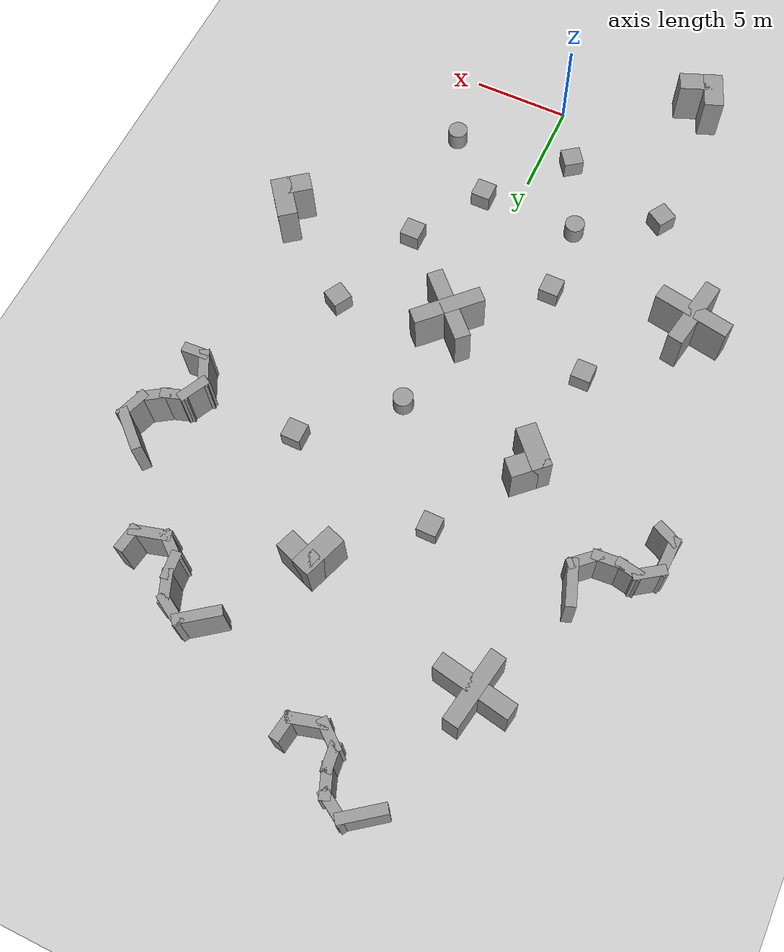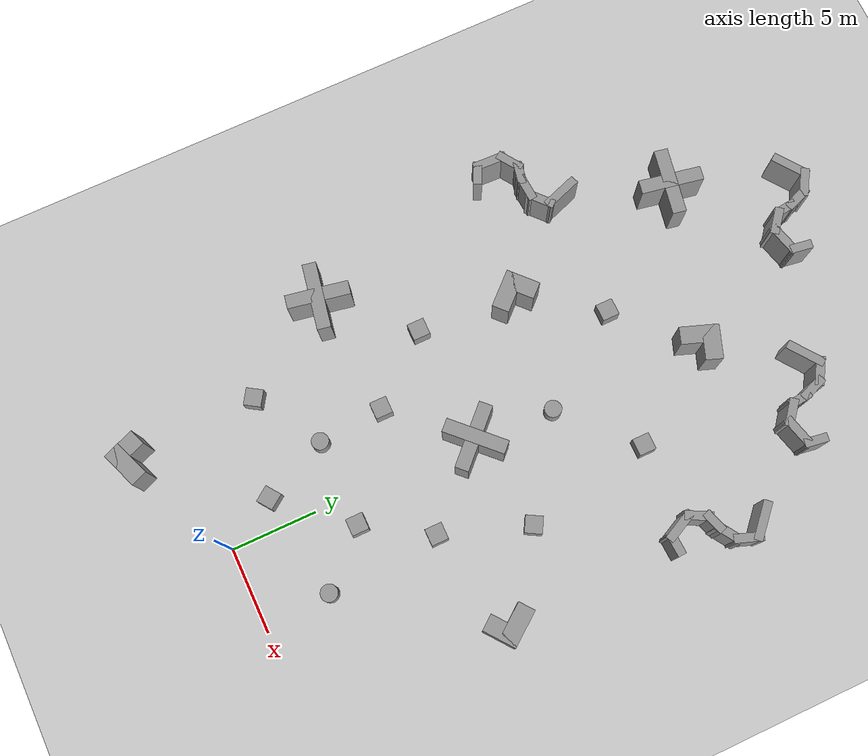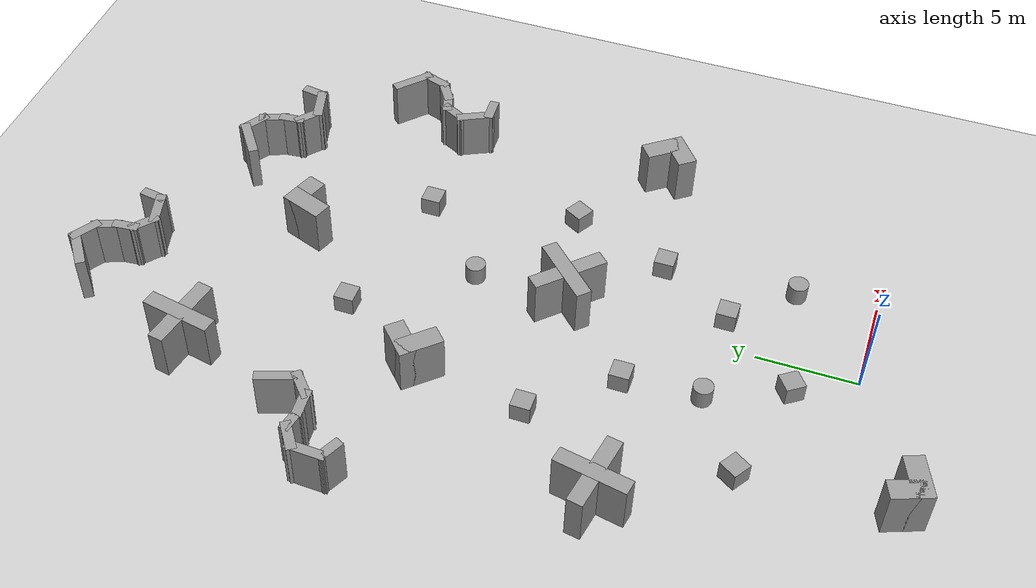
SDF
<sdf version="1.7">
 <world name="default">
  <light name="sun" type="directional">
   <pose>0 0 10 0 -0 0</pose>
   <diffuse>0.8 0.8 0.8 1</diffuse>
   <specular>0.2 0.2 0.2 1</specular>
   <attenuation>
    <range>1000</range>
    <constant>0.9</constant>
    <linear>0.01</linear>
    <quadratic>0.001</quadratic>
   </attenuation>
   <direction>-0.5 0.1 -0.9</direction>
   <spot><inner_angle>0</inner_angle><outer_angle>0</outer_angle><falloff>0</falloff></spot>
  </light>
  <model name="ground_plane">
   <static>1</static>
   <link name="link">
    <collision name="collision">
     <geometry><plane><normal>0 0 1</normal><size>100 100</size></plane></geometry>
     <surface><friction><ode><mu>100</mu><mu2>50</mu2></ode></friction></surface>
    </collision>
    <visual name="visual">
     <cast_shadows>0</cast_shadows>
     <geometry><plane><normal>0 0 1</normal><size>100 100</size></plane></geometry>
     <material>
      <script><uri>file://media/materials/scripts/gazebo.material</uri><name>Gazebo/Grey</name></script>
     </material>
    </visual>
   </link>
  </model>
  <gravity>0 0 -9.8</gravity>
  <magnetic_field>6e-06 2.3e-05 -4.2e-05</magnetic_field>
  <atmosphere type="adiabatic"/>
  <physics type="ode">
   <max_step_size>0.001</max_step_size>
   <real_time_factor>1</real_time_factor>
   <real_time_update_rate>1000</real_time_update_rate>
  </physics>
  <scene><ambient>0.4 0.4 0.4 1</ambient><background>0.7 0.7 0.7 1</background><shadows>1</shadows></scene>
  <spherical_coordinates>
   <surface_model>EARTH_WGS84</surface_model>
   <latitude_deg>0</latitude_deg>
   <longitude_deg>0</longitude_deg>
   <elevation>0</elevation>
   <heading_deg>0</heading_deg>
  </spherical_coordinates>
  <model name="unit_box">
   <pose>-1.66416 3.01834 0.5 0 -0 0.628744</pose>
   <link name="link">
    <inertial>
     <mass>1</mass>
     <inertia>
      <ixx>0.166667</ixx>
      <ixy>0</ixy>
      <ixz>0</ixz>
      <iyy>0.166667</iyy>
      <iyz>0</iyz>
      <izz>0.166667</izz>
     </inertia>
    </inertial>
    <collision name="collision"><geometry><box><size>1 1 1</size></box></geometry></collision>
    <visual name="visual">
     <geometry><box><size>1 1 1</size></box></geometry>
     <material>
      <script><name>Gazebo/Grey</name><uri>file://media/materials/scripts/gazebo.material</uri></script>
     </material>
    </visual>
   </link>
  </model>
  <model name="unit_box_0">
   <pose>1.73005 6.85128 0.5 0 -0 0</pose>
   <link name="link">
    <inertial>
     <mass>1</mass>
     <inertia>
      <ixx>0.166667</ixx>
      <ixy>0</ixy>
      <ixz>0</ixz>
      <iyy>0.166667</iyy>
      <iyz>0</iyz>
      <izz>0.166667</izz>
     </inertia>
    </inertial>
    <collision name="collision"><geometry><box><size>1 1 1</size></box></geometry></collision>
    <visual name="visual">
     <geometry><box><size>1 1 1</size></box></geometry>
     <material>
      <script><name>Gazebo/Grey</name><uri>file://media/materials/scripts/gazebo.material</uri></script>
     </material>
    </visual>
   </link>
  </model>
  <model name="unit_cylinder">
   <pose>-3.38082 6.83674 0.499997 3e-06 2e-06 0</pose>
   <link name="link">
    <inertial>
     <mass>1</mass>
     <inertia><ixx>0.145833</ixx><ixy>0</ixy><ixz>0</ixz><iyy>0.145833</iyy><iyz>0</iyz><izz>0.125</izz></inertia>
    </inertial>
    <collision name="collision">
     <geometry><cylinder><radius>0.5</radius><length>1</length></cylinder></geometry>
    </collision>
    <visual name="visual">
     <geometry><cylinder><radius>0.5</radius><length>1</length></cylinder></geometry>
     <material>
      <script><name>Gazebo/Grey</name><uri>file://media/materials/scripts/gazebo.material</uri></script>
     </material>
    </visual>
   </link>
  </model>
  <model name="unit_cylinder_0">
   <pose>4.51628 3.96318 0.499992 -3e-06 3e-06 0</pose>
   <link name="link">
    <inertial>
     <mass>1</mass>
     <inertia><ixx>0.145833</ixx><ixy>0</ixy><ixz>0</ixz><iyy>0.145833</iyy><iyz>0</iyz><izz>0.125</izz></inertia>
    </inertial>
    <collision name="collision">
     <geometry><cylinder><radius>0.5</radius><length>1</length></cylinder></geometry>
    </collision>
    <visual name="visual">
     <geometry><cylinder><radius>0.5</radius><length>1</length></cylinder></geometry>
     <material>
      <script><name>Gazebo/Grey</name><uri>file://media/materials/scripts/gazebo.material</uri></script>
     </material>
    </visual>
   </link>
  </model>
  <model name="unit_box_1">
   <pose>4.06174 10.5852 0.5 0 -0 0</pose>
   <link name="link">
    <inertial>
     <mass>1</mass>
     <inertia>
      <ixx>0.166667</ixx>
      <ixy>0</ixy>
      <ixz>0</ixz>
      <iyy>0.166667</iyy>
      <iyz>0</iyz>
      <izz>0.166667</izz>
     </inertia>
    </inertial>
    <collision name="collision"><geometry><box><size>1 1 1</size></box></geometry></collision>
    <visual name="visual">
     <geometry><box><size>1 1 1</size></box></geometry>
     <material>
      <script><name>Gazebo/Grey</name><uri>file://media/materials/scripts/gazebo.material</uri></script>
     </material>
    </visual>
   </link>
  </model>
  <model name="unit_box_2">
   <pose>-3.69714 10.6982 0.5 0 -0 0</pose>
   <link name="link">
    <inertial>
     <mass>1</mass>
     <inertia>
      <ixx>0.166667</ixx>
      <ixy>0</ixy>
      <ixz>0</ixz>
      <iyy>0.166667</iyy>
      <iyz>0</iyz>
      <izz>0.166667</izz>
     </inertia>
    </inertial>
    <collision name="collision"><geometry><box><size>1 1 1</size></box></geometry></collision>
    <visual name="visual">
     <geometry><box><size>1 1 1</size></box></geometry>
     <material>
      <script><name>Gazebo/Grey</name><uri>file://media/materials/scripts/gazebo.material</uri></script>
     </material>
    </visual>
   </link>
  </model>
  <model name="unit_box_3">
   <pose>5.82902 15.6637 0.5 0 -0 1.05451</pose>
   <link name="link">
    <inertial>
     <mass>1</mass>
     <inertia>
      <ixx>0.166667</ixx>
      <ixy>0</ixy>
      <ixz>0</ixz>
      <iyy>0.166667</iyy>
      <iyz>0</iyz>
      <izz>0.166667</izz>
     </inertia>
    </inertial>
    <collision name="collision"><geometry><box><size>1 1 1</size></box></geometry></collision>
    <visual name="visual">
     <geometry><box><size>1 1 1</size></box></geometry>
     <material>
      <script><name>Gazebo/Grey</name><uri>file://media/materials/scripts/gazebo.material</uri></script>
     </material>
    </visual>
   </link>
  </model>
  <model name="unit_cylinder_2">
   <pose>0.425725 19.4303 0.499992 -3e-06 -4e-06 -0</pose>
   <link name="link">
    <inertial>
     <mass>1</mass>
     <inertia><ixx>0.145833</ixx><ixy>0</ixy><ixz>0</ixz><iyy>0.145833</iyy><iyz>0</iyz><izz>0.125</izz></inertia>
    </inertial>
    <collision name="collision">
     <geometry><cylinder><radius>0.5</radius><length>1</length></cylinder></geometry>
    </collision>
    <visual name="visual">
     <geometry><cylinder><radius>0.5</radius><length>1</length></cylinder></geometry>
     <material>
      <script><name>Gazebo/Grey</name><uri>file://media/materials/scripts/gazebo.material</uri></script>
     </material>
    </visual>
   </link>
  </model>
  <model name="unit_box_4">
   <pose>-6.96298 14.4858 0.5 -0 -0 -0</pose>
   <link name="link">
    <inertial>
     <mass>1</mass>
     <inertia>
      <ixx>0.166667</ixx>
      <ixy>0</ixy>
      <ixz>0</ixz>
      <iyy>0.166667</iyy>
      <iyz>0</iyz>
      <izz>0.166667</izz>
     </inertia>
    </inertial>
    <collision name="collision"><geometry><box><size>1 1 1</size></box></geometry></collision>
    <visual name="visual">
     <geometry><box><size>1 1 1</size></box></geometry>
     <material>
      <script><name>Gazebo/Grey</name><uri>file://media/materials/scripts/gazebo.material</uri></script>
     </material>
    </visual>
   </link>
  </model>
  <model name="unit_box_6">
   <pose>-7.25952 4.43272 0.5 0 0 -0.568259</pose>
   <link name="link">
    <inertial>
     <mass>1</mass>
     <inertia>
      <ixx>0.166667</ixx>
      <ixy>0</ixy>
      <ixz>0</ixz>
      <iyy>0.166667</iyy>
      <iyz>0</iyz>
      <izz>0.166667</izz>
     </inertia>
    </inertial>
    <collision name="collision"><geometry><box><size>1 1 1</size></box></geometry></collision>
    <visual name="visual">
     <geometry><box><size>1 1 1</size></box></geometry>
     <material>
      <script><name>Gazebo/Grey</name><uri>file://media/materials/scripts/gazebo.material</uri></script>
     </material>
    </visual>
   </link>
  </model>
  <model name="unit_box_7">
   <pose>-3.48056 24.7542 0.5 0 -0 0</pose>
   <link name="link">
    <inertial>
     <mass>1</mass>
     <inertia>
      <ixx>0.166667</ixx>
      <ixy>0</ixy>
      <ixz>0</ixz>
      <iyy>0.166667</iyy>
      <iyz>0</iyz>
      <izz>0.166667</izz>
     </inertia>
    </inertial>
    <collision name="collision"><geometry><box><size>1 1 1</size></box></geometry></collision>
    <visual name="visual">
     <geometry><box><size>1 1 1</size></box></geometry>
     <material>
      <script><name>Gazebo/Grey</name><uri>file://media/materials/scripts/gazebo.material</uri></script>
     </material>
    </visual>
   </link>
  </model>
  <model name="unit_box_8">
   <pose>4.37335 23.1651 0.5 0 -0 0</pose>
   <link name="link">
    <inertial>
     <mass>1</mass>
     <inertia>
      <ixx>0.166667</ixx>
      <ixy>0</ixy>
      <ixz>0</ixz>
      <iyy>0.166667</iyy>
      <iyz>0</iyz>
      <izz>0.166667</izz>
     </inertia>
    </inertial>
    <collision name="collision"><geometry><box><size>1 1 1</size></box></geometry></collision>
    <visual name="visual">
     <geometry><box><size>1 1 1</size></box></geometry>
     <material>
      <script><name>Gazebo/Grey</name><uri>file://media/materials/scripts/gazebo.material</uri></script>
     </material>
    </visual>
   </link>
  </model>
  <model name="L_shape">
   <pose>-4.84154 19.7856 0 0 0 -0.820187</pose>
   <link name="Wall_0">
    <collision name="Wall_0_Collision">
     <geometry><box><size>2.25 1 2.5</size></box></geometry>
     <pose>0 0 1.25 0 -0 0</pose>
    </collision>
    <visual name="Wall_0_Visual">
     <pose>0 0 1.25 0 -0 0</pose>
     <geometry><box><size>2.25 1 2.5</size></box></geometry>
     <material>
      <script><uri>file://media/materials/scripts/gazebo.material</uri><name>Gazebo/Grey</name></script>
      <ambient>1 1 1 1</ambient>
     </material>
     <meta><layer>0</layer></meta>
    </visual>
    <pose>-1.1474 -1.16979 0 0 -0 3.14159</pose>
   </link>
   <link name="Wall_1">
    <collision name="Wall_1_Collision">
     <geometry><box><size>2 1 2.5</size></box></geometry>
     <pose>0 0 1.25 0 -0 0</pose>
    </collision>
    <visual name="Wall_1_Visual">
     <pose>0 0 1.25 0 -0 0</pose>
     <geometry><box><size>2 1 2.5</size></box></geometry>
     <material>
      <script><uri>file://media/materials/scripts/gazebo.material</uri><name>Gazebo/Grey</name></script>
      <ambient>1 1 1 1</ambient>
     </material>
     <meta><layer>0</layer></meta>
    </visual>
    <pose>-1.7724 -0.669791 0 0 -0 1.5708</pose>
   </link>
   <static>1</static>
  </model>
  <model name="x_shape">
   <pose>1.91761 17.0572 0 0 -0 0</pose>
   <link name="Wall_3">
    <collision name="Wall_3_Collision">
     <geometry><box><size>3.89983 0.8 2.5</size></box></geometry>
     <pose>0 0 1.25 0 -0 0</pose>
    </collision>
    <visual name="Wall_3_Visual">
     <pose>0 0 1.25 0 -0 0</pose>
     <geometry><box><size>3.89983 0.8 2.5</size></box></geometry>
     <material>
      <script><uri>file://media/materials/scripts/gazebo.material</uri><name>Gazebo/Grey</name></script>
      <ambient>1 1 1 1</ambient>
     </material>
     <meta><layer>0</layer></meta>
    </visual>
    <pose>-1.69468 -2.43768 0 0 -0 2.35619</pose>
   </link>
   <link name="Wall_5">
    <collision name="Wall_5_Collision">
     <geometry><box><size>3.65035 0.8 2.5</size></box></geometry>
     <pose>0 0 1.25 0 -0 0</pose>
    </collision>
    <visual name="Wall_5_Visual">
     <pose>0 0 1.25 0 -0 0</pose>
     <geometry><box><size>3.65035 0.8 2.5</size></box></geometry>
     <material>
      <script><uri>file://media/materials/scripts/gazebo.material</uri><name>Gazebo/Grey</name></script>
      <ambient>1 1 1 1</ambient>
     </material>
     <meta><layer>0</layer></meta>
    </visual>
    <pose>-1.66718 -2.35168 0 0 -0 -2.35595</pose>
   </link>
   <static>1</static>
  </model>
  <model name="L_shape_clone">
   <pose>-5.70577 -1.71435 0 0 -0 0.374528</pose>
   <link name="Wall_0">
    <collision name="Wall_0_Collision">
     <geometry><box><size>2.25 1 2.5</size></box></geometry>
     <pose>0 0 1.25 0 -0 0</pose>
    </collision>
    <visual name="Wall_0_Visual">
     <pose>0 0 1.25 0 -0 0</pose>
     <geometry><box><size>2.25 1 2.5</size></box></geometry>
     <material>
      <script><uri>file://media/materials/scripts/gazebo.material</uri><name>Gazebo/Grey</name></script>
      <ambient>1 1 1 1</ambient>
     </material>
     <meta><layer>0</layer></meta>
    </visual>
    <pose>-1.1474 -1.16979 0 0 -0 3.14159</pose>
   </link>
   <link name="Wall_1">
    <collision name="Wall_1_Collision">
     <geometry><box><size>2 1 2.5</size></box></geometry>
     <pose>0 0 1.25 0 -0 0</pose>
    </collision>
    <visual name="Wall_1_Visual">
     <pose>0 0 1.25 0 -0 0</pose>
     <geometry><box><size>2 1 2.5</size></box></geometry>
     <material>
      <script><uri>file://media/materials/scripts/gazebo.material</uri><name>Gazebo/Grey</name></script>
      <ambient>1 1 1 1</ambient>
     </material>
     <meta><layer>0</layer></meta>
    </visual>
    <pose>-1.7724 -0.669791 0 0 -0 1.5708</pose>
   </link>
   <static>1</static>
  </model>
  <model name="x_shape_clone">
   <pose>-10.7228 12.9546 0 0 -0 0.601302</pose>
   <link name="Wall_3">
    <collision name="Wall_3_Collision">
     <geometry><box><size>3.89983 0.8 2.5</size></box></geometry>
     <pose>0 0 1.25 0 -0 0</pose>
    </collision>
    <visual name="Wall_3_Visual">
     <pose>0 0 1.25 0 -0 0</pose>
     <geometry><box><size>3.89983 0.8 2.5</size></box></geometry>
     <material>
      <script><uri>file://media/materials/scripts/gazebo.material</uri><name>Gazebo/Grey</name></script>
      <ambient>1 1 1 1</ambient>
     </material>
     <meta><layer>0</layer></meta>
    </visual>
    <pose>-1.69468 -2.43768 0 0 -0 2.35619</pose>
   </link>
   <link name="Wall_5">
    <collision name="Wall_5_Collision">
     <geometry><box><size>3.65035 0.8 2.5</size></box></geometry>
     <pose>0 0 1.25 0 -0 0</pose>
    </collision>
    <visual name="Wall_5_Visual">
     <pose>0 0 1.25 0 -0 0</pose>
     <geometry><box><size>3.65035 0.8 2.5</size></box></geometry>
     <material>
      <script><uri>file://media/materials/scripts/gazebo.material</uri><name>Gazebo/Grey</name></script>
      <ambient>1 1 1 1</ambient>
     </material>
     <meta><layer>0</layer></meta>
    </visual>
    <pose>-1.66718 -2.35168 0 0 -0 -2.35595</pose>
   </link>
   <static>1</static>
  </model>
  <model name="x_shape_clone_clone">
   <pose>-8.49318 34.0167 0 0 -0 0.601302</pose>
   <link name="Wall_3">
    <collision name="Wall_3_Collision">
     <geometry><box><size>3.89983 0.8 2.5</size></box></geometry>
     <pose>0 0 1.25 0 -0 0</pose>
    </collision>
    <visual name="Wall_3_Visual">
     <pose>0 0 1.25 0 -0 0</pose>
     <geometry><box><size>3.89983 0.8 2.5</size></box></geometry>
     <material>
      <script><uri>file://media/materials/scripts/gazebo.material</uri><name>Gazebo/Grey</name></script>
      <ambient>1 1 1 1</ambient>
     </material>
     <meta><layer>0</layer></meta>
    </visual>
    <pose>-1.69468 -2.43768 0 0 -0 2.35619</pose>
   </link>
   <link name="Wall_5">
    <collision name="Wall_5_Collision">
     <geometry><box><size>3.65035 0.8 2.5</size></box></geometry>
     <pose>0 0 1.25 0 -0 0</pose>
    </collision>
    <visual name="Wall_5_Visual">
     <pose>0 0 1.25 0 -0 0</pose>
     <geometry><box><size>3.65035 0.8 2.5</size></box></geometry>
     <material>
      <script><uri>file://media/materials/scripts/gazebo.material</uri><name>Gazebo/Grey</name></script>
      <ambient>1 1 1 1</ambient>
     </material>
     <meta><layer>0</layer></meta>
    </visual>
    <pose>-1.66718 -2.35168 0 0 -0 -2.35595</pose>
   </link>
   <static>1</static>
  </model>
  <model name="L_shape_clone_0">
   <pose>0.990276 26.9868 0 0 0 -1.91642</pose>
   <link name="Wall_0">
    <collision name="Wall_0_Collision">
     <geometry><box><size>2.25 1 2.5</size></box></geometry>
     <pose>0 0 1.25 0 -0 0</pose>
    </collision>
    <visual name="Wall_0_Visual">
     <pose>0 0 1.25 0 -0 0</pose>
     <geometry><box><size>2.25 1 2.5</size></box></geometry>
     <material>
      <script><uri>file://media/materials/scripts/gazebo.material</uri><name>Gazebo/Grey</name></script>
      <ambient>1 1 1 1</ambient>
     </material>
     <meta><layer>0</layer></meta>
    </visual>
    <pose>-1.1474 -1.16979 0 0 -0 3.14159</pose>
   </link>
   <link name="Wall_1">
    <collision name="Wall_1_Collision">
     <geometry><box><size>2 1 2.5</size></box></geometry>
     <pose>0 0 1.25 0 -0 0</pose>
    </collision>
    <visual name="Wall_1_Visual">
     <pose>0 0 1.25 0 -0 0</pose>
     <geometry><box><size>2 1 2.5</size></box></geometry>
     <material>
      <script><uri>file://media/materials/scripts/gazebo.material</uri><name>Gazebo/Grey</name></script>
      <ambient>1 1 1 1</ambient>
     </material>
     <meta><layer>0</layer></meta>
    </visual>
    <pose>-1.7724 -0.669791 0 0 -0 1.5708</pose>
   </link>
   <static>1</static>
  </model>
  <model name="s_shape">
   <pose>-6.62511 18.6987 0 0 0 -0.971974</pose>
   <link name="Wall_12">
    <collision name="Wall_12_Collision">
     <geometry><box><size>2.25 0.5 2.5</size></box></geometry>
     <pose>0 0 1.25 0 -0 0</pose>
    </collision>
    <visual name="Wall_12_Visual">
     <pose>0 0 1.25 0 -0 0</pose>
     <geometry><box><size>2.25 0.5 2.5</size></box></geometry>
     <material>
      <script><uri>file://media/materials/scripts/gazebo.material</uri><name>Gazebo/Grey</name></script>
      <ambient>1 1 1 1</ambient>
     </material>
     <meta><layer>0</layer></meta>
    </visual>
    <pose>-7.47897 0.373314 0 0 -0 -0.261799</pose>
   </link>
   <link name="Wall_13">
    <collision name="Wall_13_Collision">
     <geometry><box><size>1.66773 0.5 2.5</size></box></geometry>
     <pose>0 0 1.25 0 -0 0</pose>
    </collision>
    <visual name="Wall_13_Visual">
     <pose>0 0 1.25 0 -0 0</pose>
     <geometry><box><size>1.66773 0.5 2.5</size></box></geometry>
     <material>
      <script><uri>file://media/materials/scripts/gazebo.material</uri><name>Gazebo/Grey</name></script>
      <ambient>1 1 1 1</ambient>
     </material>
     <meta><layer>0</layer></meta>
    </visual>
    <pose>-6.53266 -0.408654 0 0 -0 -1.4368</pose>
   </link>
   <link name="Wall_14">
    <collision name="Wall_14_Collision">
     <geometry><box><size>1.60066 0.5 2.5</size></box></geometry>
     <pose>0 0 1.25 0 -0 0</pose>
    </collision>
    <visual name="Wall_14_Visual">
     <pose>0 0 1.25 0 -0 0</pose>
     <geometry><box><size>1.60066 0.5 2.5</size></box></geometry>
     <material>
      <script><uri>file://media/materials/scripts/gazebo.material</uri><name>Gazebo/Grey</name></script>
      <ambient>1 1 1 1</ambient>
     </material>
     <meta><layer>0</layer></meta>
    </visual>
    <pose>-6.72966 -1.46379 0 0 -0 -2.09423</pose>
   </link>
   <link name="Wall_15">
    <collision name="Wall_15_Collision">
     <geometry><box><size>1.35042 0.5 2.5</size></box></geometry>
     <pose>0 0 1.25 0 -0 0</pose>
    </collision>
    <visual name="Wall_15_Visual">
     <pose>0 0 1.25 0 -0 0</pose>
     <geometry><box><size>1.35042 0.5 2.5</size></box></geometry>
     <material>
      <script><uri>file://media/materials/scripts/gazebo.material</uri><name>Gazebo/Grey</name></script>
      <ambient>1 1 1 1</ambient>
     </material>
     <meta><layer>0</layer></meta>
    </visual>
    <pose>-7.30566 -2.24079 0 0 -0 -2.35703</pose>
   </link>
   <link name="Wall_16">
    <collision name="Wall_16_Collision">
     <geometry><box><size>1.60015 0.5 2.5</size></box></geometry>
     <pose>0 0 1.25 0 -0 0</pose>
    </collision>
    <visual name="Wall_16_Visual">
     <pose>0 0 1.25 0 -0 0</pose>
     <geometry><box><size>1.60015 0.5 2.5</size></box></geometry>
     <material>
      <script><uri>file://media/materials/scripts/gazebo.material</uri><name>Gazebo/Grey</name></script>
      <ambient>1 1 1 1</ambient>
     </material>
     <meta><layer>0</layer></meta>
    </visual>
    <pose>-7.60666 -3.09129 0 0 -0 -1.5708</pose>
   </link>
   <link name="Wall_17">
    <collision name="Wall_17_Collision">
     <geometry><box><size>1.97179 0.5 2.5</size></box></geometry>
     <pose>0 0 1.25 0 -0 0</pose>
    </collision>
    <visual name="Wall_17_Visual">
     <pose>0 0 1.25 0 -0 0</pose>
     <geometry><box><size>1.97179 0.5 2.5</size></box></geometry>
     <material>
      <script><uri>file://media/materials/scripts/gazebo.material</uri><name>Gazebo/Grey</name></script>
      <ambient>1 1 1 1</ambient>
     </material>
     <meta><layer>0</layer></meta>
    </visual>
    <pose>-7.0145 -4.0782 0 0 -0 -0.635673</pose>
   </link>
   <link name="Wall_18">
    <collision name="Wall_18_Collision">
     <geometry><box><size>1.3499 0.5 2.5</size></box></geometry>
     <pose>0 0 1.25 0 -0 0</pose>
    </collision>
    <visual name="Wall_18_Visual">
     <pose>0 0 1.25 0 -0 0</pose>
     <geometry><box><size>1.3499 0.5 2.5</size></box></geometry>
     <material>
      <script><uri>file://media/materials/scripts/gazebo.material</uri><name>Gazebo/Grey</name></script>
      <ambient>1 1 1 1</ambient>
     </material>
     <meta><layer>0</layer></meta>
    </visual>
    <pose>-6.03122 -4.30262 0 0 -0 0.52367</pose>
   </link>
   <static>1</static>
  </model>
  <model name="s_shape_clone">
   <pose>17.4325 23.0694 0 0 0 -0.473176</pose>
   <link name="Wall_12">
    <collision name="Wall_12_Collision">
     <geometry><box><size>2.25 0.5 2.5</size></box></geometry>
     <pose>0 0 1.25 0 -0 0</pose>
    </collision>
    <visual name="Wall_12_Visual">
     <pose>0 0 1.25 0 -0 0</pose>
     <geometry><box><size>2.25 0.5 2.5</size></box></geometry>
     <material>
      <script><uri>file://media/materials/scripts/gazebo.material</uri><name>Gazebo/Grey</name></script>
      <ambient>1 1 1 1</ambient>
     </material>
     <meta><layer>0</layer></meta>
    </visual>
    <pose>-7.47897 0.373314 0 0 -0 -0.261799</pose>
   </link>
   <link name="Wall_13">
    <collision name="Wall_13_Collision">
     <geometry><box><size>1.66773 0.5 2.5</size></box></geometry>
     <pose>0 0 1.25 0 -0 0</pose>
    </collision>
    <visual name="Wall_13_Visual">
     <pose>0 0 1.25 0 -0 0</pose>
     <geometry><box><size>1.66773 0.5 2.5</size></box></geometry>
     <material>
      <script><uri>file://media/materials/scripts/gazebo.material</uri><name>Gazebo/Grey</name></script>
      <ambient>1 1 1 1</ambient>
     </material>
     <meta><layer>0</layer></meta>
    </visual>
    <pose>-6.53266 -0.408654 0 0 -0 -1.4368</pose>
   </link>
   <link name="Wall_14">
    <collision name="Wall_14_Collision">
     <geometry><box><size>1.60066 0.5 2.5</size></box></geometry>
     <pose>0 0 1.25 0 -0 0</pose>
    </collision>
    <visual name="Wall_14_Visual">
     <pose>0 0 1.25 0 -0 0</pose>
     <geometry><box><size>1.60066 0.5 2.5</size></box></geometry>
     <material>
      <script><uri>file://media/materials/scripts/gazebo.material</uri><name>Gazebo/Grey</name></script>
      <ambient>1 1 1 1</ambient>
     </material>
     <meta><layer>0</layer></meta>
    </visual>
    <pose>-6.72966 -1.46379 0 0 -0 -2.09423</pose>
   </link>
   <link name="Wall_15">
    <collision name="Wall_15_Collision">
     <geometry><box><size>1.35042 0.5 2.5</size></box></geometry>
     <pose>0 0 1.25 0 -0 0</pose>
    </collision>
    <visual name="Wall_15_Visual">
     <pose>0 0 1.25 0 -0 0</pose>
     <geometry><box><size>1.35042 0.5 2.5</size></box></geometry>
     <material>
      <script><uri>file://media/materials/scripts/gazebo.material</uri><name>Gazebo/Grey</name></script>
      <ambient>1 1 1 1</ambient>
     </material>
     <meta><layer>0</layer></meta>
    </visual>
    <pose>-7.30566 -2.24079 0 0 -0 -2.35703</pose>
   </link>
   <link name="Wall_16">
    <collision name="Wall_16_Collision">
     <geometry><box><size>1.60015 0.5 2.5</size></box></geometry>
     <pose>0 0 1.25 0 -0 0</pose>
    </collision>
    <visual name="Wall_16_Visual">
     <pose>0 0 1.25 0 -0 0</pose>
     <geometry><box><size>1.60015 0.5 2.5</size></box></geometry>
     <material>
      <script><uri>file://media/materials/scripts/gazebo.material</uri><name>Gazebo/Grey</name></script>
      <ambient>1 1 1 1</ambient>
     </material>
     <meta><layer>0</layer></meta>
    </visual>
    <pose>-7.60666 -3.09129 0 0 -0 -1.5708</pose>
   </link>
   <link name="Wall_17">
    <collision name="Wall_17_Collision">
     <geometry><box><size>1.97179 0.5 2.5</size></box></geometry>
     <pose>0 0 1.25 0 -0 0</pose>
    </collision>
    <visual name="Wall_17_Visual">
     <pose>0 0 1.25 0 -0 0</pose>
     <geometry><box><size>1.97179 0.5 2.5</size></box></geometry>
     <material>
      <script><uri>file://media/materials/scripts/gazebo.material</uri><name>Gazebo/Grey</name></script>
      <ambient>1 1 1 1</ambient>
     </material>
     <meta><layer>0</layer></meta>
    </visual>
    <pose>-7.0145 -4.0782 0 0 -0 -0.635673</pose>
   </link>
   <link name="Wall_18">
    <collision name="Wall_18_Collision">
     <geometry><box><size>1.3499 0.5 2.5</size></box></geometry>
     <pose>0 0 1.25 0 -0 0</pose>
    </collision>
    <visual name="Wall_18_Visual">
     <pose>0 0 1.25 0 -0 0</pose>
     <geometry><box><size>1.3499 0.5 2.5</size></box></geometry>
     <material>
      <script><uri>file://media/materials/scripts/gazebo.material</uri><name>Gazebo/Grey</name></script>
      <ambient>1 1 1 1</ambient>
     </material>
     <meta><layer>0</layer></meta>
    </visual>
    <pose>-6.03122 -4.30262 0 0 -0 0.52367</pose>
   </link>
   <static>1</static>
  </model>
  <model name="L_shape_clone_1">
   <pose>8.74663 12.6315 0 0 -0 2.22766</pose>
   <link name="Wall_0">
    <collision name="Wall_0_Collision">
     <geometry><box><size>2.25 1 2.5</size></box></geometry>
     <pose>0 0 1.25 0 -0 0</pose>
    </collision>
    <visual name="Wall_0_Visual">
     <pose>0 0 1.25 0 -0 0</pose>
     <geometry><box><size>2.25 1 2.5</size></box></geometry>
     <material>
      <script><uri>file://media/materials/scripts/gazebo.material</uri><name>Gazebo/Grey</name></script>
      <ambient>1 1 1 1</ambient>
     </material>
     <meta><layer>0</layer></meta>
    </visual>
    <pose>-1.1474 -1.16979 0 0 -0 3.14159</pose>
   </link>
   <link name="Wall_1">
    <collision name="Wall_1_Collision">
     <geometry><box><size>2 1 2.5</size></box></geometry>
     <pose>0 0 1.25 0 -0 0</pose>
    </collision>
    <visual name="Wall_1_Visual">
     <pose>0 0 1.25 0 -0 0</pose>
     <geometry><box><size>2 1 2.5</size></box></geometry>
     <material>
      <script><uri>file://media/materials/scripts/gazebo.material</uri><name>Gazebo/Grey</name></script>
      <ambient>1 1 1 1</ambient>
     </material>
     <meta><layer>0</layer></meta>
    </visual>
    <pose>-1.7724 -0.669791 0 0 -0 1.5708</pose>
   </link>
   <static>1</static>
  </model>
  <model name="s_shape_clone_clone">
   <pose>8.69328 38.8762 0 0 -0 0.895072</pose>
   <link name="Wall_12">
    <collision name="Wall_12_Collision">
     <geometry><box><size>2.25 0.5 2.5</size></box></geometry>
     <pose>0 0 1.25 0 -0 0</pose>
    </collision>
    <visual name="Wall_12_Visual">
     <pose>0 0 1.25 0 -0 0</pose>
     <geometry><box><size>2.25 0.5 2.5</size></box></geometry>
     <material>
      <script><uri>file://media/materials/scripts/gazebo.material</uri><name>Gazebo/Grey</name></script>
      <ambient>1 1 1 1</ambient>
     </material>
     <meta><layer>0</layer></meta>
    </visual>
    <pose>-7.47897 0.373314 0 0 -0 -0.261799</pose>
   </link>
   <link name="Wall_13">
    <collision name="Wall_13_Collision">
     <geometry><box><size>1.66773 0.5 2.5</size></box></geometry>
     <pose>0 0 1.25 0 -0 0</pose>
    </collision>
    <visual name="Wall_13_Visual">
     <pose>0 0 1.25 0 -0 0</pose>
     <geometry><box><size>1.66773 0.5 2.5</size></box></geometry>
     <material>
      <script><uri>file://media/materials/scripts/gazebo.material</uri><name>Gazebo/Grey</name></script>
      <ambient>1 1 1 1</ambient>
     </material>
     <meta><layer>0</layer></meta>
    </visual>
    <pose>-6.53266 -0.408654 0 0 -0 -1.4368</pose>
   </link>
   <link name="Wall_14">
    <collision name="Wall_14_Collision">
     <geometry><box><size>1.60066 0.5 2.5</size></box></geometry>
     <pose>0 0 1.25 0 -0 0</pose>
    </collision>
    <visual name="Wall_14_Visual">
     <pose>0 0 1.25 0 -0 0</pose>
     <geometry><box><size>1.60066 0.5 2.5</size></box></geometry>
     <material>
      <script><uri>file://media/materials/scripts/gazebo.material</uri><name>Gazebo/Grey</name></script>
      <ambient>1 1 1 1</ambient>
     </material>
     <meta><layer>0</layer></meta>
    </visual>
    <pose>-6.72966 -1.46379 0 0 -0 -2.09423</pose>
   </link>
   <link name="Wall_15">
    <collision name="Wall_15_Collision">
     <geometry><box><size>1.35042 0.5 2.5</size></box></geometry>
     <pose>0 0 1.25 0 -0 0</pose>
    </collision>
    <visual name="Wall_15_Visual">
     <pose>0 0 1.25 0 -0 0</pose>
     <geometry><box><size>1.35042 0.5 2.5</size></box></geometry>
     <material>
      <script><uri>file://media/materials/scripts/gazebo.material</uri><name>Gazebo/Grey</name></script>
      <ambient>1 1 1 1</ambient>
     </material>
     <meta><layer>0</layer></meta>
    </visual>
    <pose>-7.30566 -2.24079 0 0 -0 -2.35703</pose>
   </link>
   <link name="Wall_16">
    <collision name="Wall_16_Collision">
     <geometry><box><size>1.60015 0.5 2.5</size></box></geometry>
     <pose>0 0 1.25 0 -0 0</pose>
    </collision>
    <visual name="Wall_16_Visual">
     <pose>0 0 1.25 0 -0 0</pose>
     <geometry><box><size>1.60015 0.5 2.5</size></box></geometry>
     <material>
      <script><uri>file://media/materials/scripts/gazebo.material</uri><name>Gazebo/Grey</name></script>
      <ambient>1 1 1 1</ambient>
     </material>
     <meta><layer>0</layer></meta>
    </visual>
    <pose>-7.60666 -3.09129 0 0 -0 -1.5708</pose>
   </link>
   <link name="Wall_17">
    <collision name="Wall_17_Collision">
     <geometry><box><size>1.97179 0.5 2.5</size></box></geometry>
     <pose>0 0 1.25 0 -0 0</pose>
    </collision>
    <visual name="Wall_17_Visual">
     <pose>0 0 1.25 0 -0 0</pose>
     <geometry><box><size>1.97179 0.5 2.5</size></box></geometry>
     <material>
      <script><uri>file://media/materials/scripts/gazebo.material</uri><name>Gazebo/Grey</name></script>
      <ambient>1 1 1 1</ambient>
     </material>
     <meta><layer>0</layer></meta>
    </visual>
    <pose>-7.0145 -4.0782 0 0 -0 -0.635673</pose>
   </link>
   <link name="Wall_18">
    <collision name="Wall_18_Collision">
     <geometry><box><size>1.3499 0.5 2.5</size></box></geometry>
     <pose>0 0 1.25 0 -0 0</pose>
    </collision>
    <visual name="Wall_18_Visual">
     <pose>0 0 1.25 0 -0 0</pose>
     <geometry><box><size>1.3499 0.5 2.5</size></box></geometry>
     <material>
      <script><uri>file://media/materials/scripts/gazebo.material</uri><name>Gazebo/Grey</name></script>
      <ambient>1 1 1 1</ambient>
     </material>
     <meta><layer>0</layer></meta>
    </visual>
    <pose>-6.03122 -4.30262 0 0 -0 0.52367</pose>
   </link>
   <static>1</static>
  </model>
  <model name="s_shape_clone_clone_clone">
   <pose>-1.47124 43.3519 0 0 -0 0.895072</pose>
   <link name="Wall_12">
    <collision name="Wall_12_Collision">
     <geometry><box><size>2.25 0.5 2.5</size></box></geometry>
     <pose>0 0 1.25 0 -0 0</pose>
    </collision>
    <visual name="Wall_12_Visual">
     <pose>0 0 1.25 0 -0 0</pose>
     <geometry><box><size>2.25 0.5 2.5</size></box></geometry>
     <material>
      <script><uri>file://media/materials/scripts/gazebo.material</uri><name>Gazebo/Grey</name></script>
      <ambient>1 1 1 1</ambient>
     </material>
     <meta><layer>0</layer></meta>
    </visual>
    <pose>-7.47897 0.373314 0 0 -0 -0.261799</pose>
   </link>
   <link name="Wall_13">
    <collision name="Wall_13_Collision">
     <geometry><box><size>1.66773 0.5 2.5</size></box></geometry>
     <pose>0 0 1.25 0 -0 0</pose>
    </collision>
    <visual name="Wall_13_Visual">
     <pose>0 0 1.25 0 -0 0</pose>
     <geometry><box><size>1.66773 0.5 2.5</size></box></geometry>
     <material>
      <script><uri>file://media/materials/scripts/gazebo.material</uri><name>Gazebo/Grey</name></script>
      <ambient>1 1 1 1</ambient>
     </material>
     <meta><layer>0</layer></meta>
    </visual>
    <pose>-6.53266 -0.408654 0 0 -0 -1.4368</pose>
   </link>
   <link name="Wall_14">
    <collision name="Wall_14_Collision">
     <geometry><box><size>1.60066 0.5 2.5</size></box></geometry>
     <pose>0 0 1.25 0 -0 0</pose>
    </collision>
    <visual name="Wall_14_Visual">
     <pose>0 0 1.25 0 -0 0</pose>
     <geometry><box><size>1.60066 0.5 2.5</size></box></geometry>
     <material>
      <script><uri>file://media/materials/scripts/gazebo.material</uri><name>Gazebo/Grey</name></script>
      <ambient>1 1 1 1</ambient>
     </material>
     <meta><layer>0</layer></meta>
    </visual>
    <pose>-6.72966 -1.46379 0 0 -0 -2.09423</pose>
   </link>
   <link name="Wall_15">
    <collision name="Wall_15_Collision">
     <geometry><box><size>1.35042 0.5 2.5</size></box></geometry>
     <pose>0 0 1.25 0 -0 0</pose>
    </collision>
    <visual name="Wall_15_Visual">
     <pose>0 0 1.25 0 -0 0</pose>
     <geometry><box><size>1.35042 0.5 2.5</size></box></geometry>
     <material>
      <script><uri>file://media/materials/scripts/gazebo.material</uri><name>Gazebo/Grey</name></script>
      <ambient>1 1 1 1</ambient>
     </material>
     <meta><layer>0</layer></meta>
    </visual>
    <pose>-7.30566 -2.24079 0 0 -0 -2.35703</pose>
   </link>
   <link name="Wall_16">
    <collision name="Wall_16_Collision">
     <geometry><box><size>1.60015 0.5 2.5</size></box></geometry>
     <pose>0 0 1.25 0 -0 0</pose>
    </collision>
    <visual name="Wall_16_Visual">
     <pose>0 0 1.25 0 -0 0</pose>
     <geometry><box><size>1.60015 0.5 2.5</size></box></geometry>
     <material>
      <script><uri>file://media/materials/scripts/gazebo.material</uri><name>Gazebo/Grey</name></script>
      <ambient>1 1 1 1</ambient>
     </material>
     <meta><layer>0</layer></meta>
    </visual>
    <pose>-7.60666 -3.09129 0 0 -0 -1.5708</pose>
   </link>
   <link name="Wall_17">
    <collision name="Wall_17_Collision">
     <geometry><box><size>1.97179 0.5 2.5</size></box></geometry>
     <pose>0 0 1.25 0 -0 0</pose>
    </collision>
    <visual name="Wall_17_Visual">
     <pose>0 0 1.25 0 -0 0</pose>
     <geometry><box><size>1.97179 0.5 2.5</size></box></geometry>
     <material>
      <script><uri>file://media/materials/scripts/gazebo.material</uri><name>Gazebo/Grey</name></script>
      <ambient>1 1 1 1</ambient>
     </material>
     <meta><layer>0</layer></meta>
    </visual>
    <pose>-7.0145 -4.0782 0 0 -0 -0.635673</pose>
   </link>
   <link name="Wall_18">
    <collision name="Wall_18_Collision">
     <geometry><box><size>1.3499 0.5 2.5</size></box></geometry>
     <pose>0 0 1.25 0 -0 0</pose>
    </collision>
    <visual name="Wall_18_Visual">
     <pose>0 0 1.25 0 -0 0</pose>
     <geometry><box><size>1.3499 0.5 2.5</size></box></geometry>
     <material>
      <script><uri>file://media/materials/scripts/gazebo.material</uri><name>Gazebo/Grey</name></script>
      <ambient>1 1 1 1</ambient>
     </material>
     <meta><layer>0</layer></meta>
    </visual>
    <pose>-6.03122 -4.30262 0 0 -0 0.52367</pose>
   </link>
   <static>1</static>
  </model>
 </world>
</sdf>
